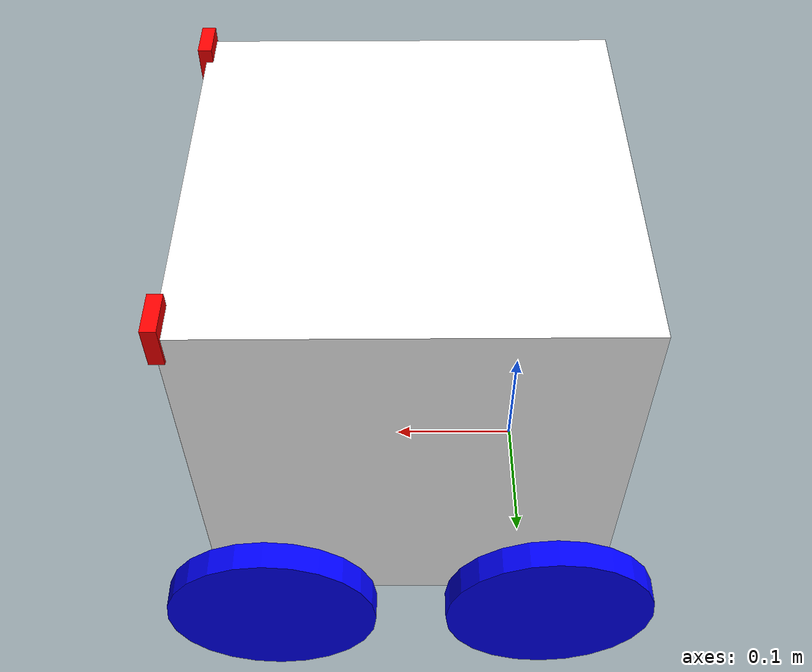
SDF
<?xml version="1.0" ?>
<sdf version="1.9">
    <model name="my_bot">

      <!-- Base Link -->
      <link name="base_link">
        <inertial>
          <pose>0.05 0 0.075 0 0 0</pose>
          <mass>0.5</mass>
          <inertia>
            <ixx>0.0046875</ixx>
            <ixy>0</ixy>
            <ixz>0</ixz>
            <iyy>0.0046875</iyy>
            <iyz>0</iyz>
            <izz>0.0075</izz>
          </inertia>
        </inertial>

        <!-- Chassis Collision -->
        <collision name="chassis_collision">
          <pose>0.09 0 0.1524 0 0 0</pose>
          <geometry>
            <box>
              <size>0.3048 0.3048 0.3048</size>
            </box>
          </geometry>
        </collision>

        <!-- Chassis Visual -->
        <visual name="chassis_visual">
          <pose>0.09 0 0.1524 0 0 0</pose>
          <geometry>
            <box>
              <size>0.3048 0.3048 0.3048</size>
            </box>
          </geometry>
          <material>
            <ambient>1 1 1 1</ambient>
            <diffuse>1 1 1 1</diffuse>
          </material>
        </visual>

        <!-- Camera 1 Visual -->
        <visual name="camera_visual">
          <pose>0.2424 0.140024 0.30 0 0 0</pose>
          <geometry>
            <box>
              <size>0.01 0.03 0.03</size>
            </box>
          </geometry>
          <material>
            <ambient>1 0 0 1</ambient>
            <diffuse>1 0 0 1</diffuse>
          </material>
        </visual>

        <!-- Camera 2 Visual -->
        <visual name="camera2_visual">
          <pose>0.2424 -0.140024 0.30 0 0 0</pose>
          <geometry>
            <box>
              <size>0.01 0.03 0.03</size>
            </box>
          </geometry>
          <material>
            <ambient>1 0 0 1</ambient>
            <diffuse>1 0 0 1</diffuse>
          </material>
        </visual>

        <!-- Camera 1 Sensor -->
        <sensor name="camera" type="camera">
          <pose>0.2424 0.140024 0.30 0 0 0</pose>
          <camera>
            <horizontal_fov>1.089</horizontal_fov>
            <image>
              <width>640</width>
              <height>480</height>
              <format>R8G8B8</format>
            </image>
            <clip>
              <near>0.05</near>
              <far>8.0</far>
            </clip>
          </camera>
          <always_on>1</always_on>
          <update_rate>10</update_rate>
          <visualize>true</visualize>
          <topic>camera</topic>
        </sensor>

        <!-- Camera 2 Sensor -->
        <sensor name="camera2" type="camera">
          <pose>0.2424 -0.140024 0.30 0 0 0</pose>
          <camera>
            <horizontal_fov>1.089</horizontal_fov>
            <image>
              <width>640</width>
              <height>480</height>
              <format>R8G8B8</format>
            </image>
            <clip>
              <near>0.05</near>
              <far>8.0</far>
            </clip>
          </camera>
          <always_on>1</always_on>
          <update_rate>10</update_rate>
          <visualize>true</visualize>
          <topic>camera2</topic>
        </sensor>
      </link>

      <!-- Left Front Wheel -->
      <link name="left_front_wheel">
        <pose relative_to="base_link">0.2 0.17 0 -1.5708 0 0</pose>
        <inertial>
          <mass>0.1</mass>
          <inertia>
            <ixx>0.000174022</ixx>
            <ixy>0</ixy>
            <ixz>0</ixz>
            <iyy>0.000174022</iyy>
            <iyz>0</iyz>
            <izz>0.000340725</izz>
          </inertia>
        </inertial>
        <collision name="collision">
          <geometry>
            <cylinder>
              <radius>0.08255</radius>
              <length>0.020955</length>
            </cylinder>
          </geometry>
        </collision>
        <visual name="visual">
          <geometry>
            <cylinder>
              <radius>0.08255</radius>
              <length>0.020955</length>
            </cylinder>
          </geometry>
          <material>
            <ambient>0 0 1 1</ambient>
            <diffuse>0 0 1 1</diffuse>
          </material>
        </visual>
      </link>

      <!-- Left Back Wheel -->
      <link name="left_back_wheel">
        <pose relative_to="base_link">-0.02 0.17 0 -1.5708 0 0</pose>
        <inertial>
          <mass>0.1</mass>
          <inertia>
            <ixx>0.000174022</ixx>
            <ixy>0</ixy>
            <ixz>0</ixz>
            <iyy>0.000174022</iyy>
            <iyz>0</iyz>
            <izz>0.000340725</izz>
          </inertia>
        </inertial>
        <collision name="collision">
          <geometry>
            <cylinder>
              <radius>0.08255</radius>
              <length>0.020955</length>
            </cylinder>
          </geometry>
        </collision>
        <visual name="visual">
          <geometry>
            <cylinder>
              <radius>0.08255</radius>
              <length>0.020955</length>
            </cylinder>
          </geometry>
          <material>
            <ambient>0 0 1 1</ambient>
            <diffuse>0 0 1 1</diffuse>
          </material>
        </visual>
      </link>

      <!-- Right Front Wheel -->
      <link name="right_front_wheel">
        <pose relative_to="base_link">0.2 -0.17 0 1.5708 0 0</pose>
        <inertial>
          <mass>0.1</mass>
          <inertia>
            <ixx>0.000174022</ixx>
            <ixy>0</ixy>
            <ixz>0</ixz>
            <iyy>0.000174022</iyy>
            <iyz>0</iyz>
            <izz>0.000340725</izz>
          </inertia>
        </inertial>
        <collision name="collision">
          <geometry>
            <cylinder>
              <radius>0.08255</radius>
              <length>0.020955</length>
            </cylinder>
          </geometry>
          <surface>
            <friction>
              <ode>
                <mu>0.001</mu>
                <mu2>0.001</mu2>
              </ode>
            </friction>
          </surface>
        </collision>
        <visual name="visual">
          <geometry>
            <cylinder>
              <radius>0.08255</radius>
              <length>0.020955</length>
            </cylinder>
          </geometry>
          <material>
            <ambient>0 0 1 1</ambient>
            <diffuse>0 0 1 1</diffuse>
          </material>
        </visual>
      </link>

      <!-- Right Back Wheel -->
      <link name="right_back_wheel">
        <pose relative_to="base_link">-0.02 -0.17 0 1.5708 0 0</pose>
        <inertial>
          <mass>0.1</mass>
          <inertia>
            <ixx>0.000174022</ixx>
            <ixy>0</ixy>
            <ixz>0</ixz>
            <iyy>0.000174022</iyy>
            <iyz>0</iyz>
            <izz>0.000340725</izz>
          </inertia>
        </inertial>
        <collision name="collision">
          <geometry>
            <cylinder>
              <radius>0.08255</radius>
              <length>0.020955</length>
            </cylinder>
          </geometry>
        </collision>
        <visual name="visual">
          <geometry>
            <cylinder>
              <radius>0.08255</radius>
              <length>0.020955</length>
            </cylinder>
          </geometry>
          <material>
            <ambient>0 0 1 1</ambient>
            <diffuse>0 0 1 1</diffuse>
          </material>
        </visual>
      </link>

      <!-- Joints -->
      <joint name="left_front_wheel_joint" type="revolute">
        <parent>base_link</parent>
        <child>left_front_wheel</child>
        <axis>
          <xyz>0 0 1</xyz>
          <limit>
            <lower>-1e16</lower>
            <upper>1e16</upper>
          </limit>
        </axis>
      </joint>

      <joint name="left_back_wheel_joint" type="revolute">
        <parent>base_link</parent>
        <child>left_back_wheel</child>
        <axis>
          <xyz>0 0 1</xyz>
          <limit>
            <lower>-1e16</lower>
            <upper>1e16</upper>
          </limit>
        </axis>
      </joint>

      <joint name="right_front_wheel_joint" type="revolute">
        <parent>base_link</parent>
        <child>right_front_wheel</child>
        <axis>
          <xyz>0 0 -1</xyz>
          <limit>
            <lower>-1e16</lower>
            <upper>1e16</upper>
          </limit>
        </axis>
      </joint>

      <joint name="right_back_wheel_joint" type="revolute">
        <parent>base_link</parent>
        <child>right_back_wheel</child>
        <axis>
          <xyz>0 0 -1</xyz>
          <limit>
            <lower>-1e16</lower>
            <upper>1e16</upper>
          </limit>
        </axis>
      </joint>

      <!-- Differential Drive Plugin -->
      <plugin filename="gz-sim-diff-drive-system" name="gz::sim::systems::DiffDrive">
        <left_joint>left_back_wheel_joint</left_joint>

        <right_joint>right_back_wheel_joint</right_joint>
        <wheel_separation>0.34</wheel_separation>
        <wheel_radius>0.08255</wheel_radius>

        <odom_publish_frequency>50</odom_publish_frequency>
        <topic>/cmd_vel</topic>
        <odom_topic>/odom</odom_topic>
        <frame_id>odom</frame_id>
        <child_frame_id>base_link</child_frame_id>
      </plugin>

      <plugin
        filename="gz-sim-odometry-publisher-system"
        name="gz::sim::systems::OdometryPublisher">
        <odom_publish_frequency>50</odom_publish_frequency>
        <dimensions>3</dimensions>
      </plugin>

      <!-- Per-joint velocity controllers -->

    </model>
</sdf>
